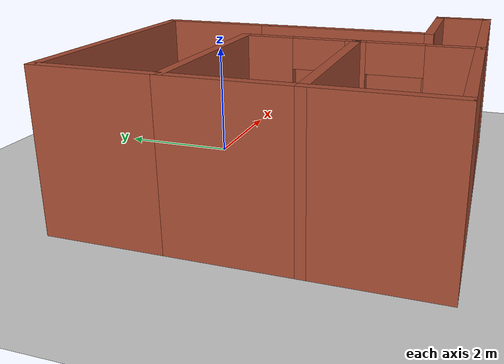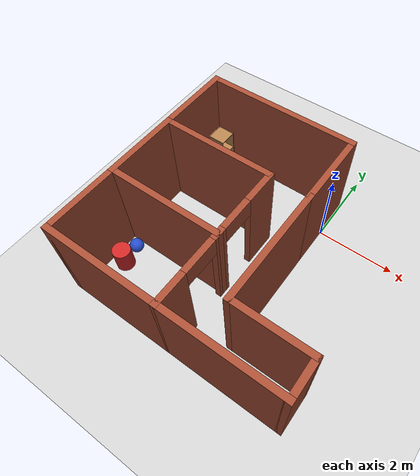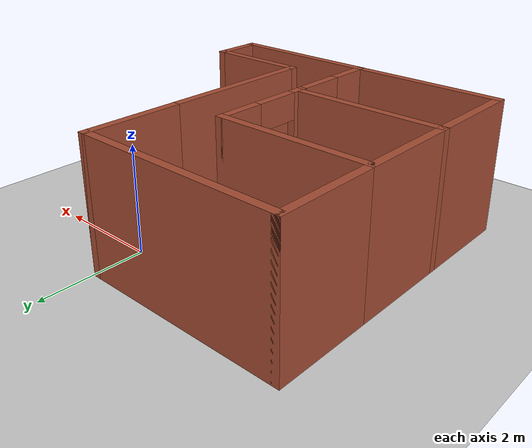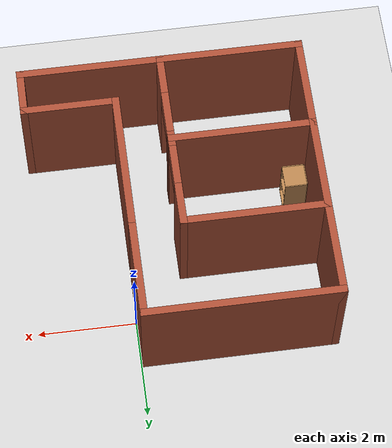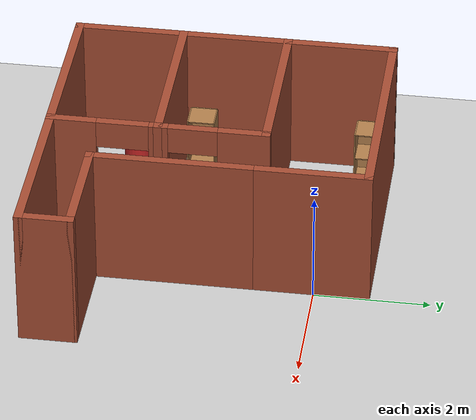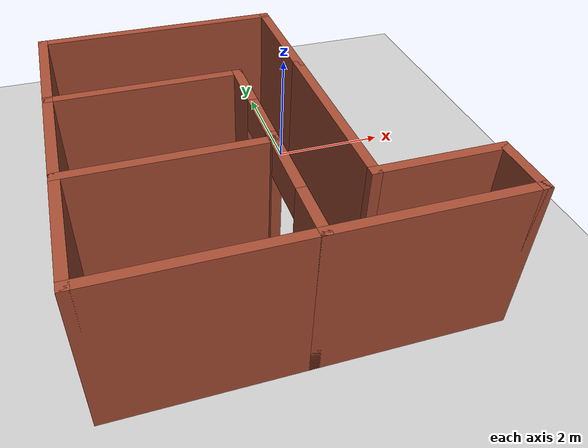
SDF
<sdf version="1.7">
 <world name="default">
  <light name="sun" type="directional">
   <pose>0 0 10 0 -0 0</pose>
   <diffuse>0.8 0.8 0.8 1</diffuse>
   <specular>0.2 0.2 0.2 1</specular>
   <attenuation>
    <range>1000</range>
    <constant>0.9</constant>
    <linear>0.01</linear>
    <quadratic>0.001</quadratic>
   </attenuation>
   <direction>-0.5 0.1 -0.9</direction>
   <spot><inner_angle>0</inner_angle><outer_angle>0</outer_angle><falloff>0</falloff></spot>
  </light>
  <model name="ground_plane">
   <static>1</static>
   <link name="link">
    <collision name="collision">
     <geometry><plane><normal>0 0 1</normal><size>100 100</size></plane></geometry>
     <surface><friction><ode><mu>100</mu><mu2>50</mu2></ode></friction></surface>
    </collision>
    <visual name="visual">
     <cast_shadows>0</cast_shadows>
     <geometry><plane><normal>0 0 1</normal><size>100 100</size></plane></geometry>
     <material>
      <script><uri>file://media/materials/scripts/gazebo.material</uri><name>Gazebo/Gray</name></script>
     </material>
    </visual>
   </link>
  </model>
  <gravity>0 0 -9.8</gravity>
  <magnetic_field>6e-06 2.3e-05 -4.2e-05</magnetic_field>
  <atmosphere type="adiabatic"/>
  <physics type="ode">
   <max_step_size>0.001</max_step_size>
   <real_time_factor>1</real_time_factor>
   <real_time_update_rate>1000</real_time_update_rate>
  </physics>
  <scene><ambient>0.4 0.4 0.4 1</ambient><background>0.7 0.7 0.7 1</background><shadows>1</shadows></scene>
  <spherical_coordinates>
   <surface_model>EARTH_WGS84</surface_model>
   <latitude_deg>0</latitude_deg>
   <longitude_deg>0</longitude_deg>
   <elevation>0</elevation>
   <heading_deg>0</heading_deg>
  </spherical_coordinates>
  <model name="my_house">
   <pose>-1.09 -1.885 0 0 -0 0</pose>
   <link name="Wall_0">
    <collision name="Wall_0_Collision">
     <geometry><box><size>2 0.15 2.5</size></box></geometry>
     <pose>0 0 1.25 0 -0 0</pose>
    </collision>
    <visual name="Wall_0_Visual">
     <pose>0 0 1.25 0 -0 0</pose>
     <geometry><box><size>2 0.15 2.5</size></box></geometry>
     <material>
      <script><uri>file://media/materials/scripts/gazebo.material</uri><name>Gazebo/Bricks</name></script>
      <ambient>1 1 1 1</ambient>
     </material>
     <meta><layer>0</layer></meta>
    </visual>
    <pose>-2.85 0 0 0 -0 1.5708</pose>
   </link>
   <link name="Wall_1">
    <collision name="Wall_1_Collision">
     <geometry><box><size>3 0.15 2.5</size></box></geometry>
     <pose>0 0 1.25 0 -0 0</pose>
    </collision>
    <visual name="Wall_1_Visual">
     <pose>0 0 1.25 0 -0 0</pose>
     <geometry><box><size>3 0.15 2.5</size></box></geometry>
     <material>
      <script><uri>file://media/materials/scripts/gazebo.material</uri><name>Gazebo/Bricks</name></script>
      <ambient>1 1 1 1</ambient>
     </material>
     <meta><layer>0</layer></meta>
    </visual>
    <pose>-1.425 0.925 0 0 -0 0</pose>
   </link>
   <link name="Wall_11">
    <collision name="Wall_11_Collision">
     <geometry><box><size>3 0.15 2.5</size></box></geometry>
     <pose>0 0 1.25 0 -0 0</pose>
    </collision>
    <visual name="Wall_11_Visual">
     <pose>0 0 1.25 0 -0 0</pose>
     <geometry><box><size>3 0.15 2.5</size></box></geometry>
     <material>
      <script><uri>file://media/materials/scripts/gazebo.material</uri><name>Gazebo/Bricks</name></script>
      <ambient>1 1 1 1</ambient>
     </material>
     <meta><layer>0</layer></meta>
    </visual>
    <pose>1.425 -2.775 0 0 -0 0</pose>
   </link>
   <link name="Wall_13">
    <collision name="Wall_13_Collision">
     <geometry><box><size>1 0.15 2.5</size></box></geometry>
     <pose>0 0 1.25 0 -0 0</pose>
    </collision>
    <visual name="Wall_13_Visual">
     <pose>0 0 1.25 0 -0 0</pose>
     <geometry><box><size>1 0.15 2.5</size></box></geometry>
     <material>
      <script><uri>file://media/materials/scripts/gazebo.material</uri><name>Gazebo/Bricks</name></script>
      <ambient>1 1 1 1</ambient>
     </material>
     <meta><layer>0</layer></meta>
    </visual>
    <pose>2.85 -2.35 0 0 -0 1.5708</pose>
   </link>
   <link name="Wall_14">
    <collision name="Wall_14_Collision">
     <geometry><box><size>2 0.15 2.5</size></box></geometry>
     <pose>0 0 1.25 0 -0 0</pose>
    </collision>
    <visual name="Wall_14_Visual">
     <pose>0 0 1.25 0 -0 0</pose>
     <geometry><box><size>2 0.15 2.5</size></box></geometry>
     <material>
      <script><uri>file://media/materials/scripts/gazebo.material</uri><name>Gazebo/Bricks</name></script>
      <ambient>1 1 1 1</ambient>
     </material>
     <meta><layer>0</layer></meta>
    </visual>
    <pose>1.925 -1.925 0 0 -0 3.14159</pose>
   </link>
   <link name="Wall_15">
    <collision name="Wall_15_Collision">
     <geometry><box><size>3 0.15 2.5</size></box></geometry>
     <pose>0 0 1.25 0 -0 0</pose>
    </collision>
    <visual name="Wall_15_Visual">
     <pose>0 0 1.25 0 -0 0</pose>
     <geometry><box><size>3 0.15 2.5</size></box></geometry>
     <material>
      <script><uri>file://media/materials/scripts/gazebo.material</uri><name>Gazebo/Bricks</name></script>
      <ambient>1 1 1 1</ambient>
     </material>
     <meta><layer>0</layer></meta>
    </visual>
    <pose>1 -0.5 0 0 -0 1.5708</pose>
   </link>
   <link name="Wall_17">
    <collision name="Wall_17_Collision">
     <geometry><box><size>2 0.15 2.5</size></box></geometry>
     <pose>0 0 1.25 0 -0 0</pose>
    </collision>
    <visual name="Wall_17_Visual">
     <pose>0 0 1.25 0 -0 0</pose>
     <geometry><box><size>2 0.15 2.5</size></box></geometry>
     <material>
      <script><uri>file://media/materials/scripts/gazebo.material</uri><name>Gazebo/Bricks</name></script>
      <ambient>1 1 1 1</ambient>
     </material>
     <meta><layer>0</layer></meta>
    </visual>
    <pose>-2.85 1.85 0 0 -0 1.5708</pose>
   </link>
   <link name="Wall_18">
    <collision name="Wall_18_Collision">
     <geometry><box><size>4 0.15 2.5</size></box></geometry>
     <pose>0 0 1.25 0 -0 0</pose>
    </collision>
    <visual name="Wall_18_Visual">
     <pose>0 0 1.25 0 -0 0</pose>
     <geometry><box><size>4 0.15 2.5</size></box></geometry>
     <material>
      <script><uri>file://media/materials/scripts/gazebo.material</uri><name>Gazebo/Bricks</name></script>
      <ambient>1 1 1 1</ambient>
     </material>
     <meta><layer>0</layer></meta>
    </visual>
    <pose>-0.925 2.775 0 0 -0 0</pose>
   </link>
   <link name="Wall_19">
    <collision name="Wall_19_Collision">
     <geometry><box><size>2 0.15 2.5</size></box></geometry>
     <pose>0 0 1.25 0 -0 0</pose>
    </collision>
    <visual name="Wall_19_Visual">
     <pose>0 0 1.25 0 -0 0</pose>
     <geometry><box><size>2 0.15 2.5</size></box></geometry>
     <material>
      <script><uri>file://media/materials/scripts/gazebo.material</uri><name>Gazebo/Bricks</name></script>
      <ambient>1 1 1 1</ambient>
     </material>
     <meta><layer>0</layer></meta>
    </visual>
    <pose>1 1.85 0 0 -0 -1.5708</pose>
   </link>
   <link name="Wall_2">
    <pose>0 0 0 0 -0 -1.5708</pose>
    <visual name="Wall_2_Visual_0">
     <pose>-0.548178 0 1.25 0 -0 0</pose>
     <geometry><box><size>0.903645 0.15 2.5</size></box></geometry>
     <material>
      <script><uri>file://media/materials/scripts/gazebo.material</uri><name>Gazebo/Bricks</name></script>
      <ambient>1 1 1 1</ambient>
     </material>
     <meta><layer>0</layer></meta>
    </visual>
    <collision name="Wall_2_Collision_0">
     <geometry><box><size>0.903645 0.15 2.5</size></box></geometry>
     <pose>-0.548178 0 1.25 0 -0 0</pose>
    </collision>
    <visual name="Wall_2_Visual_1">
     <pose>0.875736 0 1.25 0 -0 0</pose>
     <geometry><box><size>0.248529 0.15 2.5</size></box></geometry>
     <material>
      <script><uri>file://media/materials/scripts/gazebo.material</uri><name>Gazebo/Bricks</name></script>
      <ambient>1 1 1 1</ambient>
     </material>
     <meta><layer>0</layer></meta>
    </visual>
    <collision name="Wall_2_Collision_1">
     <geometry><box><size>0.248529 0.15 2.5</size></box></geometry>
     <pose>0.875736 0 1.25 0 -0 0</pose>
    </collision>
    <visual name="Wall_2_Visual_2">
     <pose>0.327558 0 2.25 0 -0 0</pose>
     <geometry><box><size>0.847826 0.15 0.5</size></box></geometry>
     <material>
      <script><uri>file://media/materials/scripts/gazebo.material</uri><name>Gazebo/Bricks</name></script>
      <ambient>1 1 1 1</ambient>
     </material>
     <meta><layer>0</layer></meta>
    </visual>
    <collision name="Wall_2_Collision_2">
     <geometry><box><size>0.847826 0.15 0.5</size></box></geometry>
     <pose>0.327558 0 2.25 0 -0 0</pose>
    </collision>
   </link>
   <link name="Wall_3">
    <collision name="Wall_3_Collision">
     <geometry><box><size>3 0.15 2.5</size></box></geometry>
     <pose>0 0 1.25 0 -0 0</pose>
    </collision>
    <visual name="Wall_3_Visual">
     <pose>0 0 1.25 0 -0 0</pose>
     <geometry><box><size>3 0.15 2.5</size></box></geometry>
     <material>
      <script><uri>file://media/materials/scripts/gazebo.material</uri><name>Gazebo/Bricks</name></script>
      <ambient>1 1 1 1</ambient>
     </material>
     <meta><layer>0</layer></meta>
    </visual>
    <pose>-1.425 -0.925 0 0 -0 3.14159</pose>
   </link>
   <link name="Wall_5">
    <collision name="Wall_5_Collision">
     <geometry><box><size>2 0.15 2.5</size></box></geometry>
     <pose>0 0 1.25 0 -0 0</pose>
    </collision>
    <visual name="Wall_5_Visual">
     <pose>0 0 1.25 0 -0 0</pose>
     <geometry><box><size>2 0.15 2.5</size></box></geometry>
     <material>
      <script><uri>file://media/materials/scripts/gazebo.material</uri><name>Gazebo/Bricks</name></script>
      <ambient>1 1 1 1</ambient>
     </material>
     <meta><layer>0</layer></meta>
    </visual>
    <pose>-2.85 -1.85 0 0 -0 -1.5708</pose>
   </link>
   <link name="Wall_6">
    <collision name="Wall_6_Collision">
     <geometry><box><size>3 0.15 2.5</size></box></geometry>
     <pose>0 0 1.25 0 -0 0</pose>
    </collision>
    <visual name="Wall_6_Visual">
     <pose>0 0 1.25 0 -0 0</pose>
     <geometry><box><size>3 0.15 2.5</size></box></geometry>
     <material>
      <script><uri>file://media/materials/scripts/gazebo.material</uri><name>Gazebo/Bricks</name></script>
      <ambient>1 1 1 1</ambient>
     </material>
     <meta><layer>0</layer></meta>
    </visual>
    <pose>-1.425 -2.775 0 0 -0 0</pose>
   </link>
   <link name="Wall_9">
    <pose>0 -1.85 0 0 -0 1.5708</pose>
    <visual name="Wall_9_Visual_0">
     <pose>-0.565953 0 1.25 0 -0 0</pose>
     <geometry><box><size>0.868094 0.15 2.5</size></box></geometry>
     <material>
      <script><uri>file://media/materials/scripts/gazebo.material</uri><name>Gazebo/Bricks</name></script>
      <ambient>1 1 1 1</ambient>
     </material>
     <meta><layer>0</layer></meta>
    </visual>
    <collision name="Wall_9_Collision_0">
     <geometry><box><size>0.868094 0.15 2.5</size></box></geometry>
     <pose>-0.565953 0 1.25 0 -0 0</pose>
    </collision>
    <visual name="Wall_9_Visual_1">
     <pose>0.884047 0 1.25 0 -0 0</pose>
     <geometry><box><size>0.231906 0.15 2.5</size></box></geometry>
     <material>
      <script><uri>file://media/materials/scripts/gazebo.material</uri><name>Gazebo/Bricks</name></script>
      <ambient>1 1 1 1</ambient>
     </material>
     <meta><layer>0</layer></meta>
    </visual>
    <collision name="Wall_9_Collision_1">
     <geometry><box><size>0.231906 0.15 2.5</size></box></geometry>
     <pose>0.884047 0 1.25 0 -0 0</pose>
    </collision>
    <visual name="Wall_9_Visual_2">
     <pose>0.318094 0 2.25 0 -0 0</pose>
     <geometry><box><size>0.9 0.15 0.5</size></box></geometry>
     <material>
      <script><uri>file://media/materials/scripts/gazebo.material</uri><name>Gazebo/Bricks</name></script>
      <ambient>1 1 1 1</ambient>
     </material>
     <meta><layer>0</layer></meta>
    </visual>
    <collision name="Wall_9_Collision_2">
     <geometry><box><size>0.9 0.15 0.5</size></box></geometry>
     <pose>0.318094 0 2.25 0 -0 0</pose>
    </collision>
   </link>
   <static>1</static>
  </model>
  <model name="cabinet">
   <static>1</static>
   <link name="cabinet_bottom_plate">
    <inertial>
     <pose>0 0 -1 0 -0 0</pose>
     <inertia><ixx>2.05</ixx><ixy>0</ixy><ixz>0</ixz><iyy>2.05</iyy><iyz>0</iyz><izz>2.05</izz></inertia>
     <mass>25</mass>
    </inertial>
    <collision name="cabinet_bottom_plate_geom">
     <pose>0 0 0.01 0 -0 0</pose>
     <geometry><box><size>0.45 0.45 0.02</size></box></geometry>
    </collision>
    <visual name="cabinet_bottom_plate_geom_visual">
     <pose>0 0 0.01 0 -0 0</pose>
     <geometry><box><size>0.45 0.45 0.02</size></box></geometry>
     <material>
      <script><uri>file://media/materials/scripts/gazebo.material</uri><name>Gazebo/Wood</name></script>
     </material>
    </visual>
    <collision name="cabinet_bottom_plate_geom_cabinet_back_plate">
     <pose>0.235 0 0.51 0 -0 0</pose>
     <geometry><box><size>0.02 0.45 1.02</size></box></geometry>
    </collision>
    <visual name="cabinet_bottom_plate_geom_cabinet_back_plate_visual">
     <pose>0.235 0 0.51 0 -0 0</pose>
     <geometry><box><size>0.02 0.45 1.02</size></box></geometry>
     <material>
      <script><uri>file://media/materials/scripts/gazebo.material</uri><name>Gazebo/Wood</name></script>
     </material>
    </visual>
    <collision name="cabinet_bottom_plate_geom_cabinet_left_plate">
     <pose>0 0.235 0.51 0 -0 0</pose>
     <geometry><box><size>0.45 0.02 1.02</size></box></geometry>
    </collision>
    <visual name="cabinet_bottom_plate_geom_cabinet_left_plate_visual">
     <pose>0 0.235 0.51 0 -0 0</pose>
     <geometry><box><size>0.45 0.02 1.02</size></box></geometry>
     <material>
      <script><uri>file://media/materials/scripts/gazebo.material</uri><name>Gazebo/Wood</name></script>
     </material>
    </visual>
    <collision name="cabinet_bottom_plate_geom_cabinet_middle_plate">
     <pose>0 0 0.51 0 -0 0</pose>
     <geometry><box><size>0.45 0.45 0.02</size></box></geometry>
    </collision>
    <visual name="cabinet_bottom_plate_geom_cabinet_middle_plate_visual">
     <pose>0 0 0.51 0 -0 0</pose>
     <geometry><box><size>0.45 0.45 0.02</size></box></geometry>
     <material>
      <script><uri>file://media/materials/scripts/gazebo.material</uri><name>Gazebo/Wood</name></script>
     </material>
    </visual>
    <collision name="cabinet_bottom_plate_geom_cabinet_right_plate">
     <pose>0 -0.235 0.51 0 -0 0</pose>
     <geometry><box><size>0.45 0.02 1.02</size></box></geometry>
    </collision>
    <visual name="cabinet_bottom_plate_geom_cabinet_right_plate_visual">
     <pose>0 -0.235 0.51 0 -0 0</pose>
     <geometry><box><size>0.45 0.02 1.02</size></box></geometry>
     <material>
      <script><uri>file://media/materials/scripts/gazebo.material</uri><name>Gazebo/Wood</name></script>
     </material>
    </visual>
    <collision name="cabinet_bottom_plate_geom_cabinet_top_plate">
     <pose>0 0 1.01 0 -0 0</pose>
     <geometry><box><size>0.45 0.45 0.02</size></box></geometry>
    </collision>
    <visual name="cabinet_bottom_plate_geom_cabinet_top_plate_visual">
     <pose>0 0 1.01 0 -0 0</pose>
     <geometry><box><size>0.45 0.45 0.02</size></box></geometry>
     <material>
      <script><uri>file://media/materials/scripts/gazebo.material</uri><name>Gazebo/Wood</name></script>
     </material>
    </visual>
   </link>
   <pose>-3.58963 0.545046 0 0 -0 3.13535</pose>
  </model>
  <model name="cabinet_0">
   <static>1</static>
   <link name="cabinet_bottom_plate">
    <inertial>
     <pose>0 0 -1 0 -0 0</pose>
     <inertia><ixx>2.05</ixx><ixy>0</ixy><ixz>0</ixz><iyy>2.05</iyy><iyz>0</iyz><izz>2.05</izz></inertia>
     <mass>25</mass>
    </inertial>
    <collision name="cabinet_bottom_plate_geom">
     <pose>0 0 0.01 0 -0 0</pose>
     <geometry><box><size>0.45 0.45 0.02</size></box></geometry>
    </collision>
    <visual name="cabinet_bottom_plate_geom_visual">
     <pose>0 0 0.01 0 -0 0</pose>
     <geometry><box><size>0.45 0.45 0.02</size></box></geometry>
     <material>
      <script><uri>file://media/materials/scripts/gazebo.material</uri><name>Gazebo/Wood</name></script>
     </material>
    </visual>
    <collision name="cabinet_bottom_plate_geom_cabinet_back_plate">
     <pose>0.235 0 0.51 0 -0 0</pose>
     <geometry><box><size>0.02 0.45 1.02</size></box></geometry>
    </collision>
    <visual name="cabinet_bottom_plate_geom_cabinet_back_plate_visual">
     <pose>0.235 0 0.51 0 -0 0</pose>
     <geometry><box><size>0.02 0.45 1.02</size></box></geometry>
     <material>
      <script><uri>file://media/materials/scripts/gazebo.material</uri><name>Gazebo/Wood</name></script>
     </material>
    </visual>
    <collision name="cabinet_bottom_plate_geom_cabinet_left_plate">
     <pose>0 0.235 0.51 0 -0 0</pose>
     <geometry><box><size>0.45 0.02 1.02</size></box></geometry>
    </collision>
    <visual name="cabinet_bottom_plate_geom_cabinet_left_plate_visual">
     <pose>0 0.235 0.51 0 -0 0</pose>
     <geometry><box><size>0.45 0.02 1.02</size></box></geometry>
     <material>
      <script><uri>file://media/materials/scripts/gazebo.material</uri><name>Gazebo/Wood</name></script>
     </material>
    </visual>
    <collision name="cabinet_bottom_plate_geom_cabinet_middle_plate">
     <pose>0 0 0.51 0 -0 0</pose>
     <geometry><box><size>0.45 0.45 0.02</size></box></geometry>
    </collision>
    <visual name="cabinet_bottom_plate_geom_cabinet_middle_plate_visual">
     <pose>0 0 0.51 0 -0 0</pose>
     <geometry><box><size>0.45 0.45 0.02</size></box></geometry>
     <material>
      <script><uri>file://media/materials/scripts/gazebo.material</uri><name>Gazebo/Wood</name></script>
     </material>
    </visual>
    <collision name="cabinet_bottom_plate_geom_cabinet_right_plate">
     <pose>0 -0.235 0.51 0 -0 0</pose>
     <geometry><box><size>0.45 0.02 1.02</size></box></geometry>
    </collision>
    <visual name="cabinet_bottom_plate_geom_cabinet_right_plate_visual">
     <pose>0 -0.235 0.51 0 -0 0</pose>
     <geometry><box><size>0.45 0.02 1.02</size></box></geometry>
     <material>
      <script><uri>file://media/materials/scripts/gazebo.material</uri><name>Gazebo/Wood</name></script>
     </material>
    </visual>
    <collision name="cabinet_bottom_plate_geom_cabinet_top_plate">
     <pose>0 0 1.01 0 -0 0</pose>
     <geometry><box><size>0.45 0.45 0.02</size></box></geometry>
    </collision>
    <visual name="cabinet_bottom_plate_geom_cabinet_top_plate_visual">
     <pose>0 0 1.01 0 -0 0</pose>
     <geometry><box><size>0.45 0.45 0.02</size></box></geometry>
     <material>
      <script><uri>file://media/materials/scripts/gazebo.material</uri><name>Gazebo/Wood</name></script>
     </material>
    </visual>
   </link>
   <pose>-3.58495 -2.43024 0 0 0 -3.13834</pose>
  </model>
  <model name="my_sphere">
   <link name="link">
    <inertial>
     <mass>1</mass>
     <inertia><ixx>0.1</ixx><ixy>0</ixy><ixz>0</ixz><iyy>0.1</iyy><iyz>0</iyz><izz>0.1</izz></inertia>
    </inertial>
    <visual name="visual">
     <geometry><sphere><radius>0.178013</radius></sphere></geometry>
     <material>
      <script><name>Gazebo/Blue</name><uri>file://media/materials/scripts/gazebo.material</uri></script>
      <shader type="pixel"><normal_map>__default__</normal_map></shader>
      <ambient>0 0 1 1</ambient>
      <diffuse>0 0 1 1</diffuse>
      <specular>0.1 0.1 0.1 1</specular>
      <emissive>0 0 0 1</emissive>
     </material>
    </visual>
    <collision name="collision">
     <geometry><sphere><radius>0.178013</radius></sphere></geometry>
     <surface>
      <friction>
       <ode><mu>1</mu><mu2>1</mu2><fdir1>0 0 0</fdir1><slip1>0</slip1><slip2>0</slip2></ode>
       <torsional>
        <coefficient>1</coefficient>
        <patch_radius>0</patch_radius>
        <surface_radius>0</surface_radius>
        <use_patch_radius>1</use_patch_radius>
        <ode><slip>0</slip></ode>
       </torsional>
      </friction>
      <bounce><restitution_coefficient>0</restitution_coefficient><threshold>1e+06</threshold></bounce>
      <contact>
       <collide_without_contact>0</collide_without_contact>
       <collide_without_contact_bitmask>1</collide_without_contact_bitmask>
       <collide_bitmask>1</collide_bitmask>
       <ode>
        <soft_cfm>0</soft_cfm>
        <soft_erp>0.2</soft_erp>
        <kp>1e+13</kp>
        <kd>1</kd>
        <max_vel>0.01</max_vel>
        <min_depth>0</min_depth>
       </ode>
       <bullet>
        <split_impulse>1</split_impulse>
        <split_impulse_penetration_threshold>-0.01</split_impulse_penetration_threshold>
        <soft_cfm>0</soft_cfm>
        <soft_erp>0.2</soft_erp>
        <kp>1e+13</kp>
        <kd>1</kd>
       </bullet>
      </contact>
     </surface>
    </collision>
   </link>
   <static>0</static>
   <pose>-3.53844 -3.1171 0.178013 0 -0 0</pose>
  </model>
  <model name="my_cylinder">
   <link name="link">
    <inertial>
     <mass>1</mass>
     <inertia><ixx>0.145833</ixx><ixy>0</ixy><ixz>0</ixz><iyy>0.145833</iyy><iyz>0</iyz><izz>0.125</izz></inertia>
    </inertial>
    <visual name="visual">
     <geometry><cylinder><radius>0.227425</radius><length>0.619446</length></cylinder></geometry>
     <material>
      <script><name>Gazebo/Red</name><uri>file://media/materials/scripts/gazebo.material</uri></script>
      <shader type="pixel"><normal_map>__default__</normal_map></shader>
      <ambient>1 0 0 1</ambient>
      <diffuse>1 0 0 1</diffuse>
      <specular>0.1 0.1 0.1 1</specular>
      <emissive>0 0 0 1</emissive>
     </material>
    </visual>
    <collision name="collision">
     <geometry><cylinder><radius>0.227425</radius><length>0.619446</length></cylinder></geometry>
     <surface>
      <friction>
       <ode><mu>1</mu><mu2>1</mu2><fdir1>0 0 0</fdir1><slip1>0</slip1><slip2>0</slip2></ode>
       <torsional>
        <coefficient>1</coefficient>
        <patch_radius>0</patch_radius>
        <surface_radius>0</surface_radius>
        <use_patch_radius>1</use_patch_radius>
        <ode><slip>0</slip></ode>
       </torsional>
      </friction>
      <bounce><restitution_coefficient>0</restitution_coefficient><threshold>1e+06</threshold></bounce>
      <contact>
       <collide_without_contact>0</collide_without_contact>
       <collide_without_contact_bitmask>1</collide_without_contact_bitmask>
       <collide_bitmask>1</collide_bitmask>
       <ode>
        <soft_cfm>0</soft_cfm>
        <soft_erp>0.2</soft_erp>
        <kp>1e+13</kp>
        <kd>1</kd>
        <max_vel>0.01</max_vel>
        <min_depth>0</min_depth>
       </ode>
       <bullet>
        <split_impulse>1</split_impulse>
        <split_impulse_penetration_threshold>-0.01</split_impulse_penetration_threshold>
        <soft_cfm>0</soft_cfm>
        <soft_erp>0.2</soft_erp>
        <kp>1e+13</kp>
        <kd>1</kd>
       </bullet>
      </contact>
     </surface>
    </collision>
   </link>
   <static>0</static>
   <pose>-3.4984 -3.59048 0.309723 -0 -0 -0</pose>
  </model>
 </world>
</sdf>
